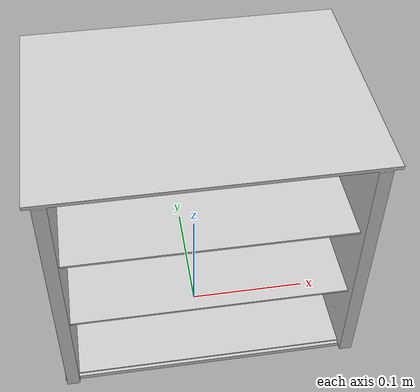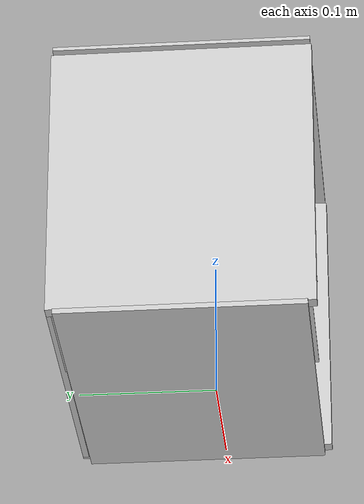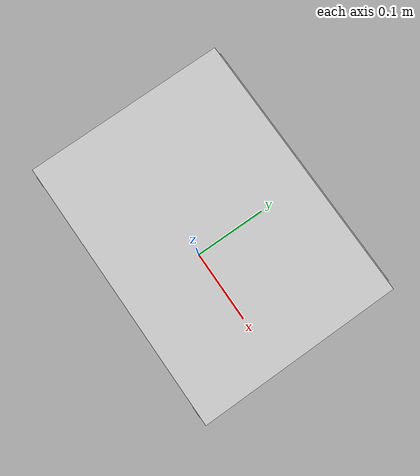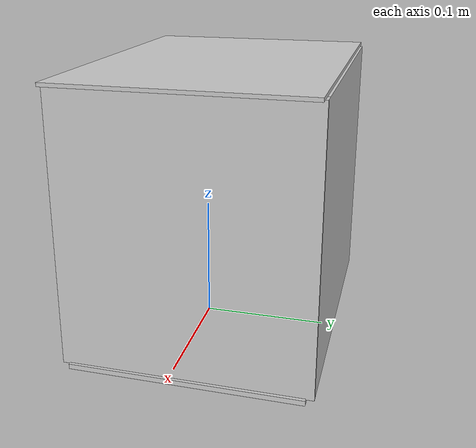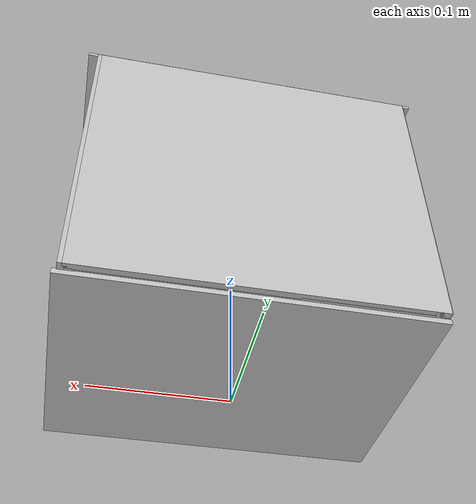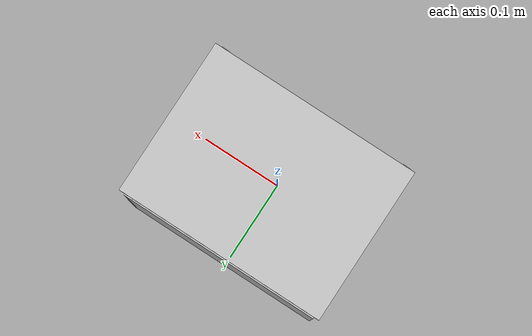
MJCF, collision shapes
<mujoco model="wooden_cabinet_base">
  <asset>
  <texture file="dark_fine_wood.png" name="tex-wooden_cabinet_base" type="2d" />
  <material name="wooden_cabinet_base" reflectance="0.5" texrepeat="1 1" texture="tex-wooden_cabinet_base" texuniform="false" />
  <mesh file="visual/wooden_cabinet_base_vis.msh" name="wooden_cabinet_base_vis" scale="0.05 0.05 0.05" /></asset>
  <worldbody>
    <body>
      <body name="object">
      <geom solimp="0.998 0.998 0.001" solref="0.001 1" density="100" friction="0.95 0.3 0.1" type="mesh" mesh="wooden_cabinet_base_vis" conaffinity="0" contype="0" group="1" material="wooden_cabinet_base" /><geom solimp="0.998 0.998 0.001" solref="0.001 1" density="100" friction="0.95 0.3 0.1" type="box" pos="0.00397 0.10954 0.11350" quat="0.49988 -0.50104 -0.50012 0.49896" size="0.00193 0.10453 0.11106" group="0" rgba="0.8 0.8 0.8 0.3" /><geom solimp="0.998 0.998 0.001" solref="0.001 1" density="100" friction="0.95 0.3 0.1" type="box" pos="0.00405 0.01635 0.00686" quat="0.70792 0.00065 0.70629 -0.00065" size="0.00199 0.08960 0.12277" group="0" rgba="0.8 0.8 0.8 0.3" /><geom solimp="0.998 0.998 0.001" solref="0.001 1" density="100" friction="0.95 0.3 0.1" type="box" pos="-0.11216 0.01625 0.11426" quat="0.00000 0.00000 1.00000 0.00000" size="0.00517 0.09542 0.10584" group="0" rgba="0.8 0.8 0.8 0.3" /><geom solimp="0.998 0.998 0.001" solref="0.001 1" density="100" friction="0.95 0.3 0.1" type="box" pos="0.11898 0.01625 0.11426" quat="0.00000 1.00000 0.00000 0.00000" size="0.00517 0.09542 0.10584" group="0" rgba="0.8 0.8 0.8 0.3" /><geom solimp="0.998 0.998 0.001" solref="0.001 1" density="100" friction="0.95 0.3 0.1" type="box" pos="0.00211 0.10938 0.11426" quat="0.49997 0.49997 -0.50003 -0.50003" size="0.00231 0.10584 0.11912" group="0" rgba="0.8 0.8 0.8 0.3" /><geom solimp="0.998 0.998 0.001" solref="0.001 1" density="100" friction="0.95 0.3 0.1" type="box" pos="0.00376 0.01868 0.14935" quat="0.70792 0.00065 0.70629 -0.00065" size="0.00085 0.08935 0.11168" group="0" rgba="0.8 0.8 0.8 0.3" /><geom solimp="0.998 0.998 0.001" solref="0.001 1" density="100" friction="0.95 0.3 0.1" type="box" pos="0.00408 0.01868 0.00933" quat="0.00065 -0.70792 0.00065 0.70629" size="0.00085 0.08935 0.11168" group="0" rgba="0.8 0.8 0.8 0.3" /><geom solimp="0.998 0.998 0.001" solref="0.001 1" density="100" friction="0.95 0.3 0.1" type="box" pos="0.00392 0.01868 0.07928" quat="0.70792 0.00065 0.70629 -0.00065" size="0.00085 0.08935 0.11168" group="0" rgba="0.8 0.8 0.8 0.3" /><geom solimp="0.998 0.998 0.001" solref="0.001 1" density="100" friction="0.95 0.3 0.1" type="box" pos="0.00394 0.01577 0.22157" quat="0.70711 0.00000 0.70711 0.00000" size="0.00142 0.09409 0.12729" group="0" rgba="0.8 0.8 0.8 0.3" /></body>
      <site rgba="0 0 0 0" size="0.005" pos="0 0 -0.06" name="bottom_site" />
      <site rgba="0 0 0 0" size="0.005" pos="0 0 0.04" name="top_site" />
      <site rgba="0 0 0 0" size="0.005" pos="0.025 0.025 0" name="horizontal_radius_site" />
    </body>
  </worldbody>
</mujoco>
